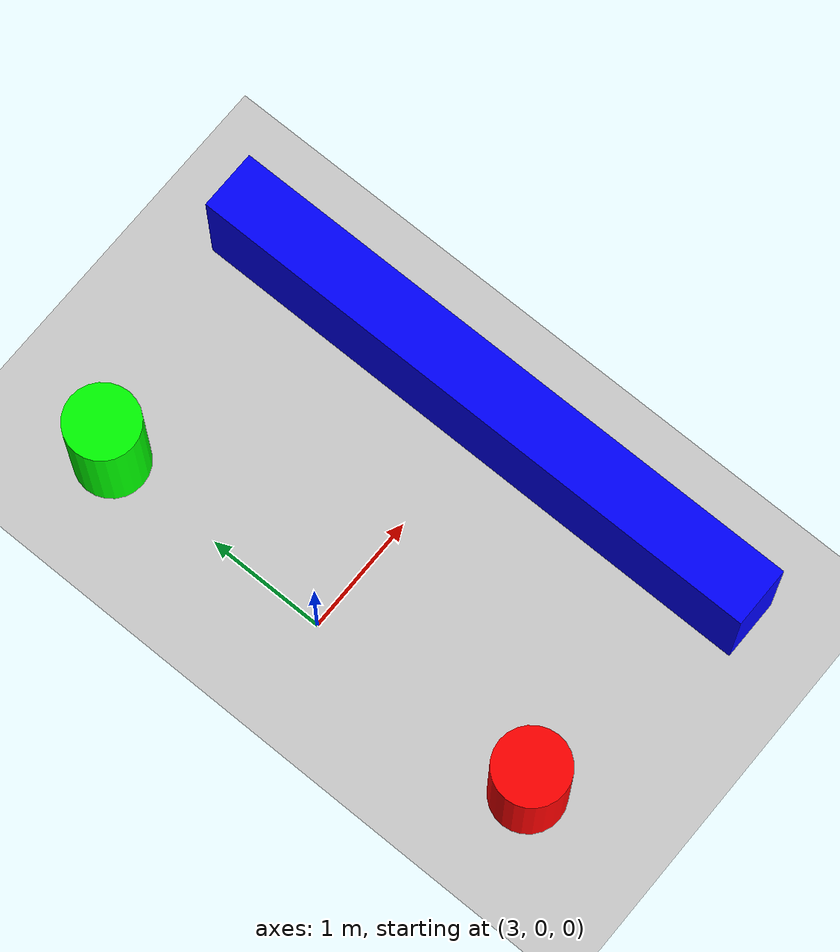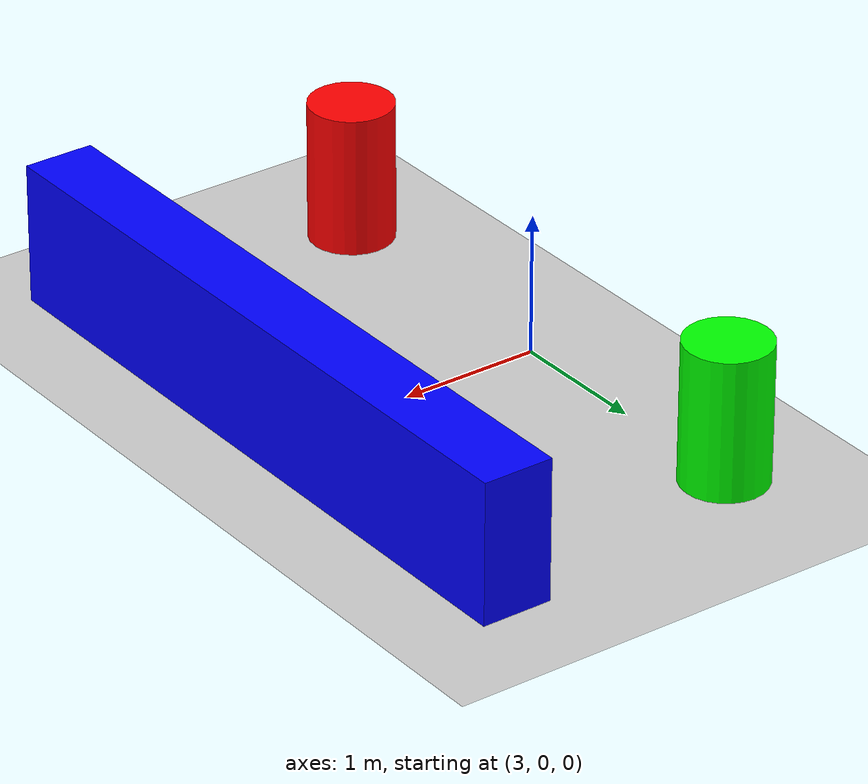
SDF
<?xml version="1.0"?>
<sdf version="1.10">
    <world name="car_world">
        <physics name="1ms" type="ignored">
            <max_step_size>0.001</max_step_size>
            <real_time_factor>1.0</real_time_factor>
        </physics>
        <plugin
            filename="gz-sim-physics-system"
            name="gz::sim::systems::Physics">
        </plugin>
        <plugin
            filename="gz-sim-user-commands-system"
            name="gz::sim::systems::UserCommands">
        </plugin>
        <plugin
            filename="gz-sim-scene-broadcaster-system"
            name="gz::sim::systems::SceneBroadcaster">
        </plugin>
        <plugin
            filename="gz-sim-imu-system"
            name="gz::sim::systems::Imu">
        </plugin>
        <plugin
            filename="gz-sim-sensors-system"
            name="gz::sim::systems::Sensors">
            <render_engine>ogre2</render_engine>
        </plugin>

        <light type="directional" name="sun">
            <cast_shadows>true</cast_shadows>
            <pose>0 0 10 0 0 0</pose>
            <diffuse>0.8 0.8 0.8 1</diffuse>
            <specular>0.2 0.2 0.2 1</specular>
            <attenuation>
                <range>1000</range>
                <constant>0.9</constant>
                <linear>0.01</linear>
                <quadratic>0.001</quadratic>
            </attenuation>
            <direction>-0.5 0.1 -0.9</direction>
        </light>

        <model name="ground_plane">
            <static>true</static>
            <link name="link">
                <collision name="collision">
                    <geometry>
                        <plane>
                            <normal>0 0 1</normal>
                        </plane>
                    </geometry>
                </collision>
                <visual name="visual">
                    <geometry>
                        <plane>
                            <normal>0 0 1</normal>
                            <size>100 100</size>
                        </plane>
                    </geometry>
                    <material>
                        <ambient>0.8 0.8 0.8 1</ambient>
                        <diffuse>0.8 0.8 0.8 1</diffuse>
                        <specular>0.8 0.8 0.8 1</specular>
                    </material>
                </visual>
            </link>
        </model>

        <model name='wall'>
            <static>true</static>
            <pose>5 0 0.5 0 0 0</pose>
            <link name='box'>
                <visual name='visual'>
                    <geometry>
                        <box>
                            <size>0.5 5.0 1.0</size>
                        </box>
                    </geometry>
                    <material>
                        <ambient>0.0 0.0 1.0 1</ambient>
                        <diffuse>0.0 0.0 1.0 1</diffuse>
                        <specular>0.0 0.0 1.0 1</specular>
                    </material>
                </visual>
                <collision name='collision'>
                    <geometry>
                        <box>
                            <size>0.5 5.0 1.0</size>
                        </box>
                    </geometry>
                </collision>
            </link>
        </model>

        <model name='cylinder_1'>
            <static>true</static>
            <pose>3 2 0.5 0 0 0</pose>
            <link name='cylinder'>
                <visual name='visual'>
                    <geometry>
                        <cylinder>
                            <radius>0.3</radius>
                            <length>1.0</length>
                        </cylinder>
                    </geometry>
                    <material>
                        <ambient>0.0 1.0 0.0 1</ambient>
                        <diffuse>0.0 1.0 0.0 1</diffuse>
                        <specular>0.0 1.0 0.0 1</specular>
                    </material>
                </visual>
                <collision name='collision'>
                    <geometry>
                        <cylinder>
                            <radius>0.3</radius>
                            <length>1.0</length>
                        </cylinder>
                    </geometry>
                </collision>
            </link>
        </model>

        <model name='cylinder_2'>
            <static>true</static>
            <pose>3 -2 0.5 0 0 0</pose>
            <link name='cylinder'>
                <visual name='visual'>
                    <geometry>
                        <cylinder>
                            <radius>0.3</radius>
                            <length>1.0</length>
                        </cylinder>
                    </geometry>
                    <material>
                        <ambient>1.0 0.0 0.0 1</ambient>
                        <diffuse>1.0 0.0 0.0 1</diffuse>
                        <specular>1.0 0.0 0.0 1</specular>
                    </material>
                </visual>
                <collision name='collision'>
                    <geometry>
                        <cylinder>
                            <radius>0.3</radius>
                            <length>1.0</length>
                        </cylinder>
                    </geometry>
                </collision>
            </link>
        </model>
    </world>
</sdf>
